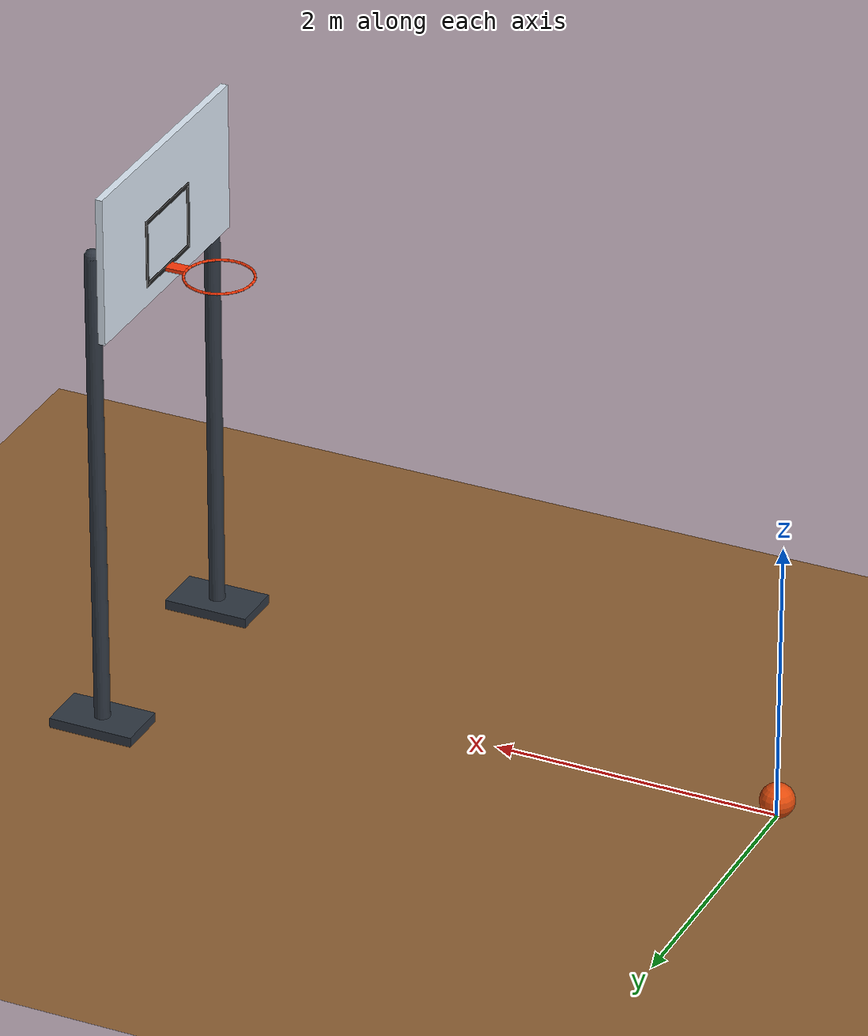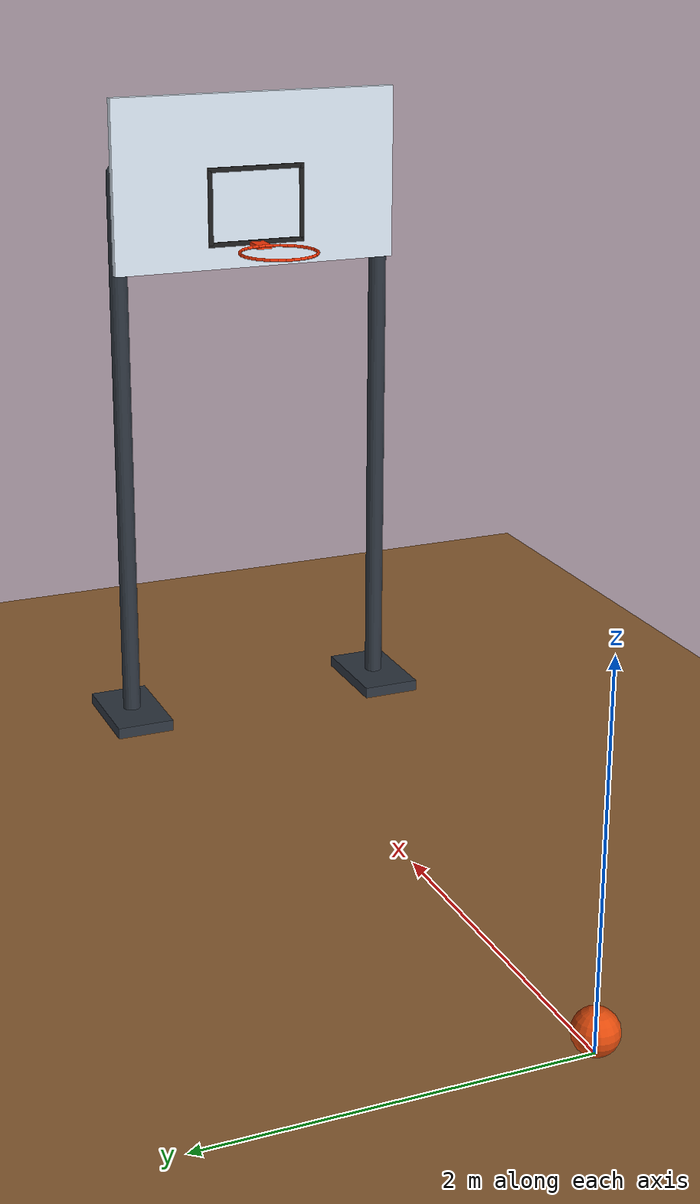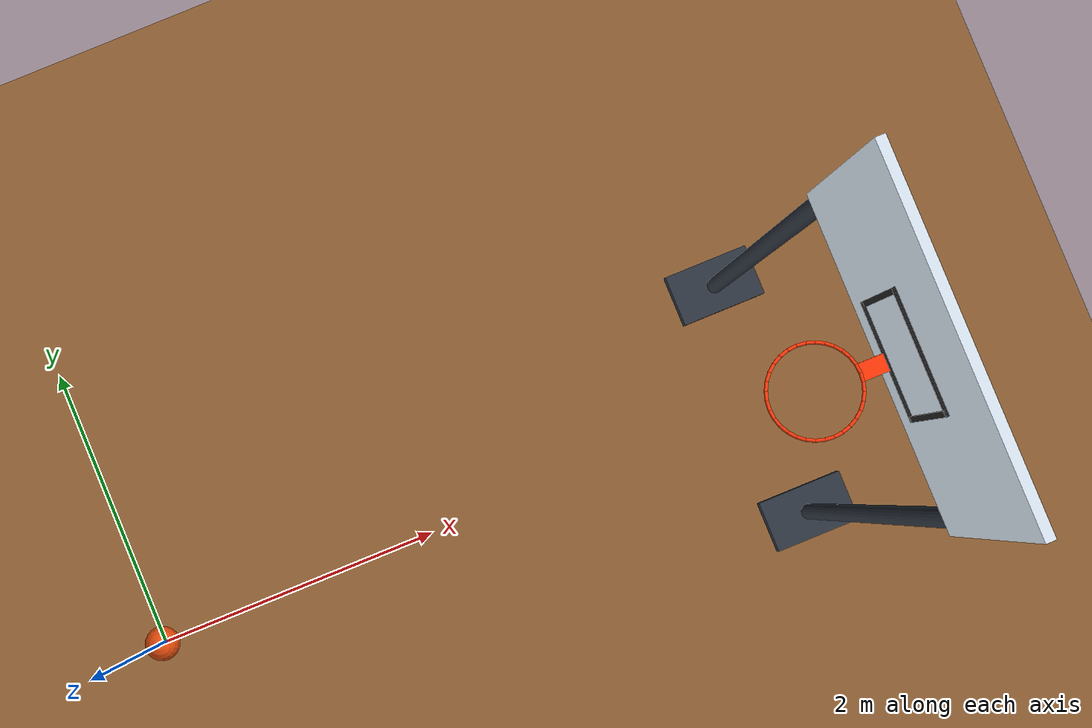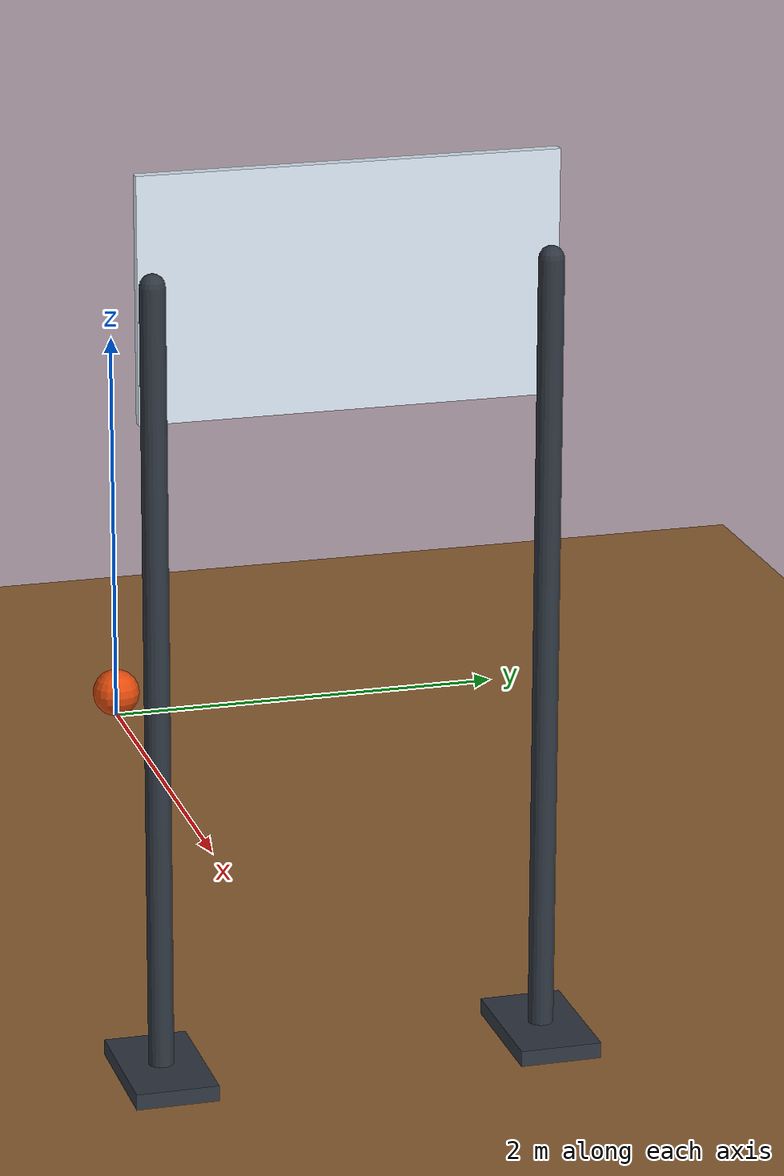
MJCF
<mujoco model="basketball_floor_launch">
  <compiler angle="radian"/>
  <option timestep="0.002" gravity="0 0 -9.81" integrator="implicitfast" cone="elliptic" iterations="80" tolerance="1e-10"/>

  <visual>
    <headlight ambient="0.35 0.35 0.35" diffuse="0.7 0.7 0.7" specular="0.2 0.2 0.2"/>
  </visual>

  <worldbody>
    <light name="court_light" pos="2 -3 7" dir="0 0.3 -1" directional="true"/>
    <camera name="side_view" pos="2 -8 4.2" xyaxes="1 0 0 0 0.265 0.964" fovy="50"/>

    <geom name="floor" type="plane" pos="0 0 0" size="9 6 0.1" rgba="0.55 0.37 0.20 1" condim="6" friction="0.9 0.02 0.05" solref="0.01 1" solimp="0.95 0.99 0.001"/>

    <!-- Size-7 basketball: 24 cm diameter and 624 g. -->
    <body name="ball" pos="0 0 0.12">
      <freejoint name="ball_free"/>
      <geom name="ball" type="sphere" size="0.12" mass="0.624" rgba="0.88 0.29 0.045 1" condim="6" friction="0.9 0.02 0.05" solref="0.01 1" solimp="0.95 0.99 0.001"/>
    </body>

    <!-- Approximately 45 cm clear opening, with an 18 mm diameter steel rim. -->
    <body name="hoop" pos="4 0 3.05">
      <geom name="rim_00" type="capsule" fromto="0.234 0 0 0.229504 0.045651 0" size="0.009" rgba="1 0.22 0.035 1"/>
      <geom name="rim_01" type="capsule" fromto="0.229504 0.045651 0 0.216188 0.089548 0" size="0.009" rgba="1 0.22 0.035 1"/>
      <geom name="rim_02" type="capsule" fromto="0.216188 0.089548 0 0.194564 0.130003 0" size="0.009" rgba="1 0.22 0.035 1"/>
      <geom name="rim_03" type="capsule" fromto="0.194564 0.130003 0 0.165463 0.165463 0" size="0.009" rgba="1 0.22 0.035 1"/>
      <geom name="rim_04" type="capsule" fromto="0.165463 0.165463 0 0.130003 0.194564 0" size="0.009" rgba="1 0.22 0.035 1"/>
      <geom name="rim_05" type="capsule" fromto="0.130003 0.194564 0 0.089548 0.216188 0" size="0.009" rgba="1 0.22 0.035 1"/>
      <geom name="rim_06" type="capsule" fromto="0.089548 0.216188 0 0.045651 0.229504 0" size="0.009" rgba="1 0.22 0.035 1"/>
      <geom name="rim_07" type="capsule" fromto="0.045651 0.229504 0 0 0.234 0" size="0.009" rgba="1 0.22 0.035 1"/>
      <geom name="rim_08" type="capsule" fromto="0 0.234 0 -0.045651 0.229504 0" size="0.009" rgba="1 0.22 0.035 1"/>
      <geom name="rim_09" type="capsule" fromto="-0.045651 0.229504 0 -0.089548 0.216188 0" size="0.009" rgba="1 0.22 0.035 1"/>
      <geom name="rim_10" type="capsule" fromto="-0.089548 0.216188 0 -0.130003 0.194564 0" size="0.009" rgba="1 0.22 0.035 1"/>
      <geom name="rim_11" type="capsule" fromto="-0.130003 0.194564 0 -0.165463 0.165463 0" size="0.009" rgba="1 0.22 0.035 1"/>
      <geom name="rim_12" type="capsule" fromto="-0.165463 0.165463 0 -0.194564 0.130003 0" size="0.009" rgba="1 0.22 0.035 1"/>
      <geom name="rim_13" type="capsule" fromto="-0.194564 0.130003 0 -0.216188 0.089548 0" size="0.009" rgba="1 0.22 0.035 1"/>
      <geom name="rim_14" type="capsule" fromto="-0.216188 0.089548 0 -0.229504 0.045651 0" size="0.009" rgba="1 0.22 0.035 1"/>
      <geom name="rim_15" type="capsule" fromto="-0.229504 0.045651 0 -0.234 0 0" size="0.009" rgba="1 0.22 0.035 1"/>
      <geom name="rim_16" type="capsule" fromto="-0.234 0 0 -0.229504 -0.045651 0" size="0.009" rgba="1 0.22 0.035 1"/>
      <geom name="rim_17" type="capsule" fromto="-0.229504 -0.045651 0 -0.216188 -0.089548 0" size="0.009" rgba="1 0.22 0.035 1"/>
      <geom name="rim_18" type="capsule" fromto="-0.216188 -0.089548 0 -0.194564 -0.130003 0" size="0.009" rgba="1 0.22 0.035 1"/>
      <geom name="rim_19" type="capsule" fromto="-0.194564 -0.130003 0 -0.165463 -0.165463 0" size="0.009" rgba="1 0.22 0.035 1"/>
      <geom name="rim_20" type="capsule" fromto="-0.165463 -0.165463 0 -0.130003 -0.194564 0" size="0.009" rgba="1 0.22 0.035 1"/>
      <geom name="rim_21" type="capsule" fromto="-0.130003 -0.194564 0 -0.089548 -0.216188 0" size="0.009" rgba="1 0.22 0.035 1"/>
      <geom name="rim_22" type="capsule" fromto="-0.089548 -0.216188 0 -0.045651 -0.229504 0" size="0.009" rgba="1 0.22 0.035 1"/>
      <geom name="rim_23" type="capsule" fromto="-0.045651 -0.229504 0 0 -0.234 0" size="0.009" rgba="1 0.22 0.035 1"/>
      <geom name="rim_24" type="capsule" fromto="0 -0.234 0 0.045651 -0.229504 0" size="0.009" rgba="1 0.22 0.035 1"/>
      <geom name="rim_25" type="capsule" fromto="0.045651 -0.229504 0 0.089548 -0.216188 0" size="0.009" rgba="1 0.22 0.035 1"/>
      <geom name="rim_26" type="capsule" fromto="0.089548 -0.216188 0 0.130003 -0.194564 0" size="0.009" rgba="1 0.22 0.035 1"/>
      <geom name="rim_27" type="capsule" fromto="0.130003 -0.194564 0 0.165463 -0.165463 0" size="0.009" rgba="1 0.22 0.035 1"/>
      <geom name="rim_28" type="capsule" fromto="0.165463 -0.165463 0 0.194564 -0.130003 0" size="0.009" rgba="1 0.22 0.035 1"/>
      <geom name="rim_29" type="capsule" fromto="0.194564 -0.130003 0 0.216188 -0.089548 0" size="0.009" rgba="1 0.22 0.035 1"/>
      <geom name="rim_30" type="capsule" fromto="0.216188 -0.089548 0 0.229504 -0.045651 0" size="0.009" rgba="1 0.22 0.035 1"/>
      <geom name="rim_31" type="capsule" fromto="0.229504 -0.045651 0 0.234 0 0" size="0.009" rgba="1 0.22 0.035 1"/>
      <geom name="hoop_bracket" type="box" pos="0.3045 0 -0.007" size="0.0705 0.045 0.013" rgba="1 0.22 0.035 1"/>
    </body>

    <body name="backboard" pos="4.4 0 3.425">
      <geom name="backboard_panel" type="box" size="0.025 0.9 0.525" rgba="0.86 0.91 0.96 1"/>
      <geom name="target_left" type="box" pos="-0.029 -0.295 -0.15" size="0.004 0.015 0.225" rgba="0.12 0.12 0.12 1" contype="0" conaffinity="0"/>
      <geom name="target_right" type="box" pos="-0.029 0.295 -0.15" size="0.004 0.015 0.225" rgba="0.12 0.12 0.12 1" contype="0" conaffinity="0"/>
      <geom name="target_bottom" type="box" pos="-0.029 0 -0.375" size="0.004 0.31 0.015" rgba="0.12 0.12 0.12 1" contype="0" conaffinity="0"/>
      <geom name="target_top" type="box" pos="-0.029 0 0.075" size="0.004 0.31 0.015" rgba="0.12 0.12 0.12 1" contype="0" conaffinity="0"/>
    </body>

    <!-- Supports are outside the ball's flight and landing lane. -->
    <body name="basket_support" pos="4.48 0 0">
      <geom name="support_left" type="capsule" fromto="0 -0.85 0.06 0 -0.85 3.5" size="0.055" rgba="0.18 0.21 0.25 1"/>
      <geom name="support_right" type="capsule" fromto="0 0.85 0.06 0 0.85 3.5" size="0.055" rgba="0.18 0.21 0.25 1"/>
      <geom name="support_base_left" type="box" pos="0 -0.85 0.035" size="0.3 0.18 0.035" rgba="0.18 0.21 0.25 1"/>
      <geom name="support_base_right" type="box" pos="0 0.85 0.035" size="0.3 0.18 0.035" rgba="0.18 0.21 0.25 1"/>
    </body>
  </worldbody>

  <keyframe>
    <!-- Ideal ballistic center crossing: t = 4/3 s, z = 3.05 m, descending. -->
    <!-- Sliding and rolling contact friction dissipate motion after landing. -->
    <key name="start" qpos="0 0 0.12 1 0 0 0" qvel="3 0 8.7375 0 0 0"/>
  </keyframe>
</mujoco>
